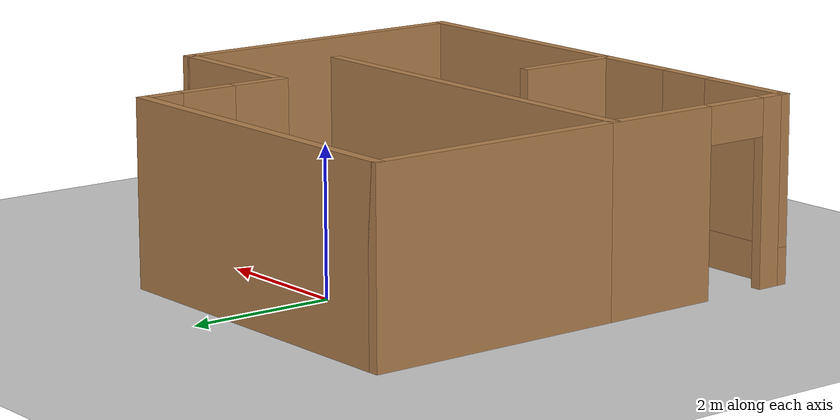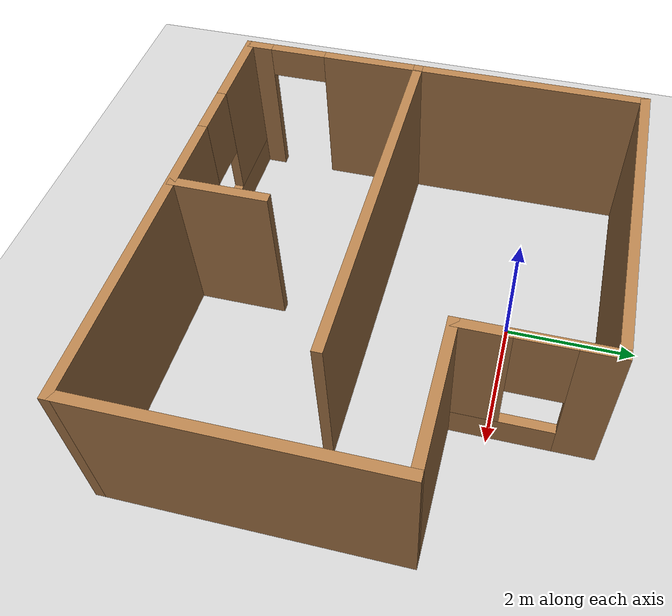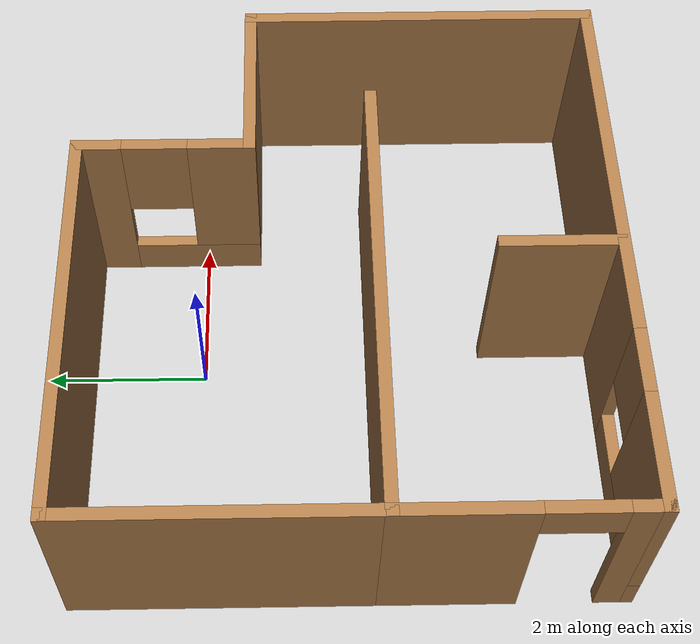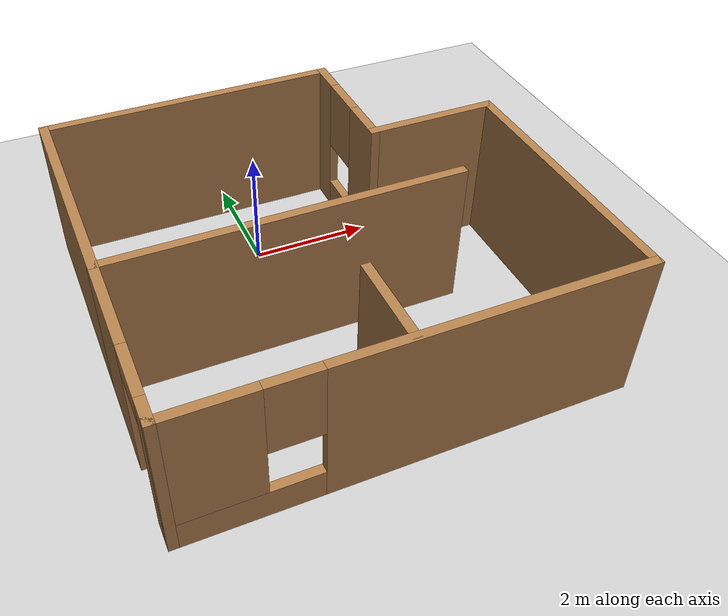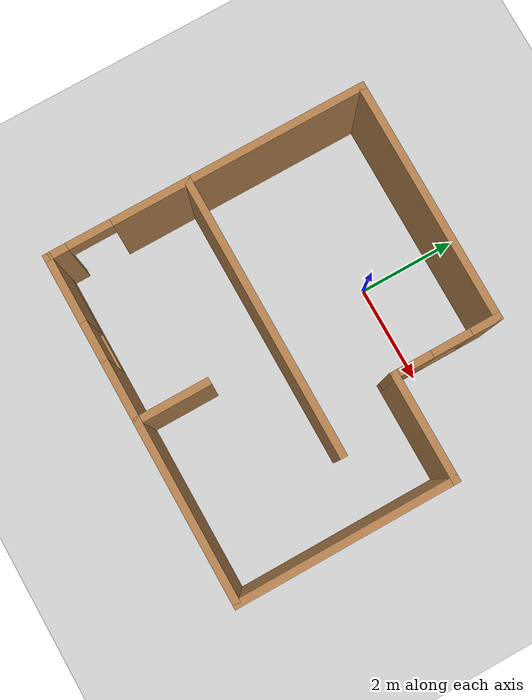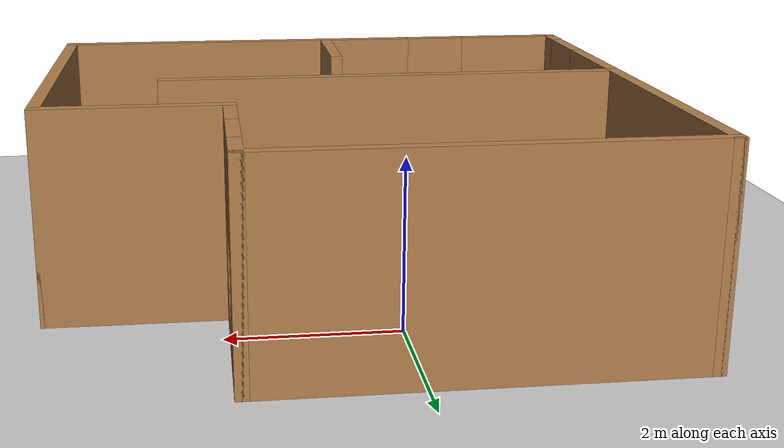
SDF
<?xml version="1.0" ?>
<sdf version="1.4">
  <world name="default">
    <!-- A global light source -->
    <include>
      <uri>model://sun</uri>
    </include>
    <!-- A ground plane -->
    <include>
      <uri>model://ground_plane</uri>
    </include>

    <include>
      <uri>/home/breno/building_editor_models/chale</uri>
    </include>
  </world>
</sdf>

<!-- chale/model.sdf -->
<sdf version='1.7'>
  <model name='chale'>
    <pose>0.474528 -1.75776 0 0 -0 0</pose>
    <link name='Wall_1'>
      <pose>-3.475 -1.8 0 0 -0 1.5708</pose>
      <visual name='Wall_1_Visual_0'>
        <pose>-1.26723 0 1.25 0 -0 0</pose>
        <geometry>
          <box>
            <size>0.465536 0.15 2.5</size>
          </box>
        </geometry>
        <material>
          <script>
            <uri>file://media/materials/scripts/gazebo.material</uri>
            <name>Gazebo/Wood</name>
          </script>
          <ambient>1 1 1 1</ambient>
        </material>
        <meta>
          <layer>0</layer>
        </meta>
      </visual>
      <collision name='Wall_1_Collision_0'>
        <geometry>
          <box>
            <size>0.465536 0.15 2.5</size>
          </box>
        </geometry>
        <pose>-1.26723 0 1.25 0 -0 0</pose>
      </collision>
      <visual name='Wall_1_Visual_1'>
        <pose>0.682768 0 1.25 0 -0 0</pose>
        <geometry>
          <box>
            <size>1.63446 0.15 2.5</size>
          </box>
        </geometry>
        <material>
          <script>
            <uri>file://media/materials/scripts/gazebo.material</uri>
            <name>Gazebo/Wood</name>
          </script>
          <ambient>1 1 1 1</ambient>
        </material>
        <meta>
          <layer>0</layer>
        </meta>
      </visual>
      <collision name='Wall_1_Collision_1'>
        <geometry>
          <box>
            <size>1.63446 0.15 2.5</size>
          </box>
        </geometry>
        <pose>0.682768 0 1.25 0 -0 0</pose>
      </collision>
      <visual name='Wall_1_Visual_2'>
        <pose>-0.584464 0 2.25 0 -0 0</pose>
        <geometry>
          <box>
            <size>0.9 0.15 0.5</size>
          </box>
        </geometry>
        <material>
          <script>
            <uri>file://media/materials/scripts/gazebo.material</uri>
            <name>Gazebo/Wood</name>
          </script>
          <ambient>1 1 1 1</ambient>
        </material>
        <meta>
          <layer>0</layer>
        </meta>
      </visual>
      <collision name='Wall_1_Collision_2'>
        <geometry>
          <box>
            <size>0.9 0.15 0.5</size>
          </box>
        </geometry>
        <pose>-0.584464 0 2.25 0 -0 0</pose>
      </collision>
    </link>
    <link name='Wall_10'>
      <pose>0 -3.225 0 0 -0 3.14159</pose>
      <visual name='Wall_10_Visual_0'>
        <pose>-1.10528 0 1.25 0 -0 0</pose>
        <geometry>
          <box>
            <size>4.88944 0.15 2.5</size>
          </box>
        </geometry>
        <material>
          <script>
            <uri>file://media/materials/scripts/gazebo.material</uri>
            <name>Gazebo/Wood</name>
          </script>
          <ambient>1 1 1 1</ambient>
        </material>
        <meta>
          <layer>0</layer>
        </meta>
      </visual>
      <collision name='Wall_10_Collision_0'>
        <geometry>
          <box>
            <size>4.88944 0.15 2.5</size>
          </box>
        </geometry>
        <pose>-1.10528 0 1.25 0 -0 0</pose>
      </collision>
      <visual name='Wall_10_Visual_1'>
        <pose>2.44472 0 0.25 0 -0 0</pose>
        <geometry>
          <box>
            <size>2.21056 0.15 0.5</size>
          </box>
        </geometry>
        <material>
          <script>
            <uri>file://media/materials/scripts/gazebo.material</uri>
            <name>Gazebo/Wood</name>
          </script>
          <ambient>1 1 1 1</ambient>
        </material>
        <meta>
          <layer>0</layer>
        </meta>
      </visual>
      <collision name='Wall_10_Collision_1'>
        <geometry>
          <box>
            <size>2.21056 0.15 0.5</size>
          </box>
        </geometry>
        <pose>2.44472 0 0.25 0 -0 0</pose>
      </collision>
      <visual name='Wall_10_Visual_2'>
        <pose>2.84472 0 1.5 0 -0 0</pose>
        <geometry>
          <box>
            <size>1.41056 0.15 2</size>
          </box>
        </geometry>
        <material>
          <script>
            <uri>file://media/materials/scripts/gazebo.material</uri>
            <name>Gazebo/Wood</name>
          </script>
          <ambient>1 1 1 1</ambient>
        </material>
        <meta>
          <layer>0</layer>
        </meta>
      </visual>
      <collision name='Wall_10_Collision_2'>
        <geometry>
          <box>
            <size>1.41056 0.15 2</size>
          </box>
        </geometry>
        <pose>2.84472 0 1.5 0 -0 0</pose>
      </collision>
      <visual name='Wall_10_Visual_3'>
        <pose>1.73944 0 1.9 0 -0 0</pose>
        <geometry>
          <box>
            <size>0.8 0.15 1.2</size>
          </box>
        </geometry>
        <material>
          <script>
            <uri>file://media/materials/scripts/gazebo.material</uri>
            <name>Gazebo/Wood</name>
          </script>
          <ambient>1 1 1 1</ambient>
        </material>
        <meta>
          <layer>0</layer>
        </meta>
      </visual>
      <collision name='Wall_10_Collision_3'>
        <geometry>
          <box>
            <size>0.8 0.15 1.2</size>
          </box>
        </geometry>
        <pose>1.73944 0 1.9 0 -0 0</pose>
      </collision>
    </link>
    <link name='Wall_12'>
      <collision name='Wall_12_Collision'>
        <geometry>
          <box>
            <size>1.5 0.15 2.5</size>
          </box>
        </geometry>
        <pose>0 0 1.25 0 -0 0</pose>
      </collision>
      <visual name='Wall_12_Visual'>
        <pose>0 0 1.25 0 -0 0</pose>
        <geometry>
          <box>
            <size>1.5 0.15 2.5</size>
          </box>
        </geometry>
        <material>
          <script>
            <uri>file://media/materials/scripts/gazebo.material</uri>
            <name>Gazebo/Wood</name>
          </script>
          <ambient>1 1 1 1</ambient>
        </material>
        <meta>
          <layer>0</layer>
        </meta>
      </visual>
      <pose>-0.130355 -2.51401 0 0 -0 1.5708</pose>
    </link>
    <link name='Wall_2'>
      <collision name='Wall_2_Collision'>
        <geometry>
          <box>
            <size>5.75 0.15 2.5</size>
          </box>
        </geometry>
        <pose>0 0 1.25 0 -0 0</pose>
      </collision>
      <visual name='Wall_2_Visual'>
        <pose>0 0 1.25 0 -0 0</pose>
        <geometry>
          <box>
            <size>5.75 0.15 2.5</size>
          </box>
        </geometry>
        <material>
          <script>
            <uri>file://media/materials/scripts/gazebo.material</uri>
            <name>Gazebo/Wood</name>
          </script>
          <ambient>1 1 1 1</ambient>
        </material>
        <meta>
          <layer>0</layer>
        </meta>
      </visual>
      <pose>-0.675 -0.375 0 0 -0 0</pose>
    </link>
    <link name='Wall_5'>
      <collision name='Wall_5_Collision'>
        <geometry>
          <box>
            <size>3.75 0.15 2.5</size>
          </box>
        </geometry>
        <pose>0 0 1.25 0 -0 0</pose>
      </collision>
      <visual name='Wall_5_Visual'>
        <pose>0 0 1.25 0 -0 0</pose>
        <geometry>
          <box>
            <size>3.75 0.15 2.5</size>
          </box>
        </geometry>
        <material>
          <script>
            <uri>file://media/materials/scripts/gazebo.material</uri>
            <name>Gazebo/Wood</name>
          </script>
          <ambient>1 1 1 1</ambient>
        </material>
        <meta>
          <layer>0</layer>
        </meta>
      </visual>
      <pose>-3.475 1.425 0 0 -0 1.5708</pose>
    </link>
    <link name='Wall_6'>
      <collision name='Wall_6_Collision'>
        <geometry>
          <box>
            <size>5 0.15 2.5</size>
          </box>
        </geometry>
        <pose>0 0 1.25 0 -0 0</pose>
      </collision>
      <visual name='Wall_6_Visual'>
        <pose>0 0 1.25 0 -0 0</pose>
        <geometry>
          <box>
            <size>5 0.15 2.5</size>
          </box>
        </geometry>
        <material>
          <script>
            <uri>file://media/materials/scripts/gazebo.material</uri>
            <name>Gazebo/Wood</name>
          </script>
          <ambient>1 1 1 1</ambient>
        </material>
        <meta>
          <layer>0</layer>
        </meta>
      </visual>
      <pose>-1.05 3.225 0 0 -0 0</pose>
    </link>
    <link name='Wall_7'>
      <pose>1.375 2.175 0 0 -0 -1.5708</pose>
      <visual name='Wall_7_Visual_0'>
        <pose>-0.815942 0 1.25 0 -0 0</pose>
        <geometry>
          <box>
            <size>0.618115 0.15 2.5</size>
          </box>
        </geometry>
        <material>
          <script>
            <uri>file://media/materials/scripts/gazebo.material</uri>
            <name>Gazebo/Wood</name>
          </script>
          <ambient>1 1 1 1</ambient>
        </material>
        <meta>
          <layer>0</layer>
        </meta>
      </visual>
      <collision name='Wall_7_Collision_0'>
        <geometry>
          <box>
            <size>0.618115 0.15 2.5</size>
          </box>
        </geometry>
        <pose>-0.815942 0 1.25 0 -0 0</pose>
      </collision>
      <visual name='Wall_7_Visual_1'>
        <pose>0.309058 0 0.25 0 -0 0</pose>
        <geometry>
          <box>
            <size>1.63189 0.15 0.5</size>
          </box>
        </geometry>
        <material>
          <script>
            <uri>file://media/materials/scripts/gazebo.material</uri>
            <name>Gazebo/Wood</name>
          </script>
          <ambient>1 1 1 1</ambient>
        </material>
        <meta>
          <layer>0</layer>
        </meta>
      </visual>
      <collision name='Wall_7_Collision_1'>
        <geometry>
          <box>
            <size>1.63189 0.15 0.5</size>
          </box>
        </geometry>
        <pose>0.309058 0 0.25 0 -0 0</pose>
      </collision>
      <visual name='Wall_7_Visual_2'>
        <pose>0.709058 0 1.5 0 -0 0</pose>
        <geometry>
          <box>
            <size>0.831885 0.15 2</size>
          </box>
        </geometry>
        <material>
          <script>
            <uri>file://media/materials/scripts/gazebo.material</uri>
            <name>Gazebo/Wood</name>
          </script>
          <ambient>1 1 1 1</ambient>
        </material>
        <meta>
          <layer>0</layer>
        </meta>
      </visual>
      <collision name='Wall_7_Collision_2'>
        <geometry>
          <box>
            <size>0.831885 0.15 2</size>
          </box>
        </geometry>
        <pose>0.709058 0 1.5 0 -0 0</pose>
      </collision>
      <visual name='Wall_7_Visual_3'>
        <pose>-0.106885 0 1.9 0 -0 0</pose>
        <geometry>
          <box>
            <size>0.8 0.15 1.2</size>
          </box>
        </geometry>
        <material>
          <script>
            <uri>file://media/materials/scripts/gazebo.material</uri>
            <name>Gazebo/Wood</name>
          </script>
          <ambient>1 1 1 1</ambient>
        </material>
        <meta>
          <layer>0</layer>
        </meta>
      </visual>
      <collision name='Wall_7_Collision_3'>
        <geometry>
          <box>
            <size>0.8 0.15 1.2</size>
          </box>
        </geometry>
        <pose>-0.106885 0 1.9 0 -0 0</pose>
      </collision>
    </link>
    <link name='Wall_8'>
      <collision name='Wall_8_Collision'>
        <geometry>
          <box>
            <size>2.25 0.15 2.5</size>
          </box>
        </geometry>
        <pose>0 0 1.25 0 -0 0</pose>
      </collision>
      <visual name='Wall_8_Visual'>
        <pose>0 0 1.25 0 -0 0</pose>
        <geometry>
          <box>
            <size>2.25 0.15 2.5</size>
          </box>
        </geometry>
        <material>
          <script>
            <uri>file://media/materials/scripts/gazebo.material</uri>
            <name>Gazebo/Wood</name>
          </script>
          <ambient>1 1 1 1</ambient>
        </material>
        <meta>
          <layer>0</layer>
        </meta>
      </visual>
      <pose>2.425 1.125 0 0 -0 0</pose>
    </link>
    <link name='Wall_9'>
      <collision name='Wall_9_Collision'>
        <geometry>
          <box>
            <size>4.5 0.15 2.5</size>
          </box>
        </geometry>
        <pose>0 0 1.25 0 -0 0</pose>
      </collision>
      <visual name='Wall_9_Visual'>
        <pose>0 0 1.25 0 -0 0</pose>
        <geometry>
          <box>
            <size>4.5 0.15 2.5</size>
          </box>
        </geometry>
        <material>
          <script>
            <uri>file://media/materials/scripts/gazebo.material</uri>
            <name>Gazebo/Wood</name>
          </script>
          <ambient>1 1 1 1</ambient>
        </material>
        <meta>
          <layer>0</layer>
        </meta>
      </visual>
      <pose>3.475 -1.05 0 0 -0 -1.5708</pose>
    </link>
    <static>1</static>
  </model>
</sdf>
